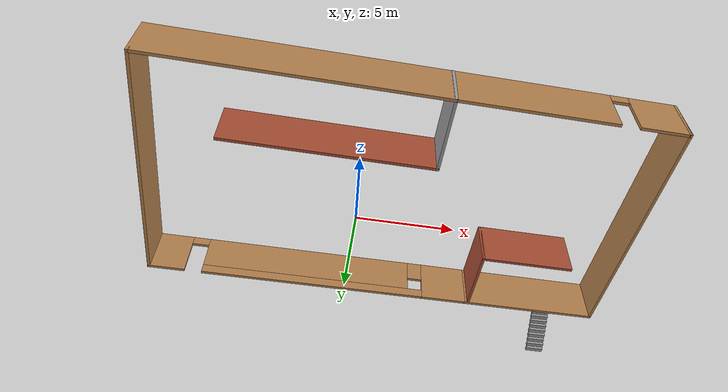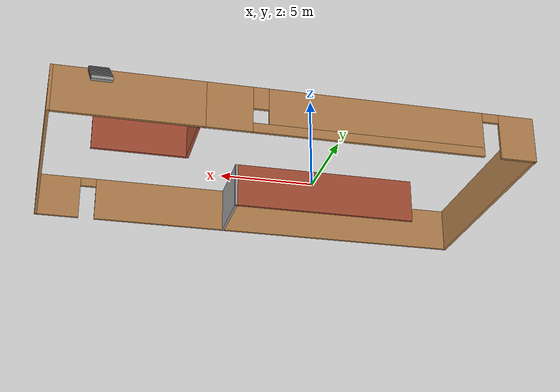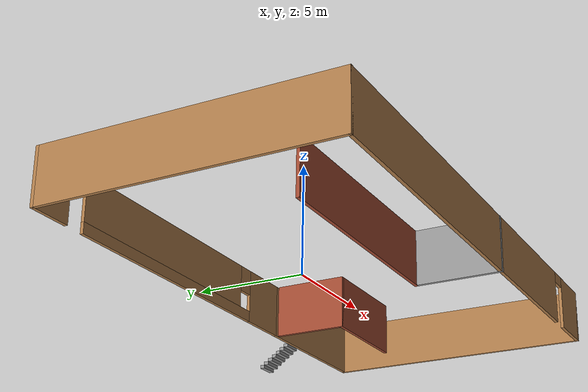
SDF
<?xml version='1.0'?>
<sdf version='1.7'>
  <model name='myenv'>
    <pose>1.91834 0.66891 0 0 -0 0</pose>
    <link name='Stairs_1'>
      <visual name='Stairs_1_Visual_0'>
        <pose>10.1907 8.14939 0.083333 0 -0 0</pose>
        <geometry>
          <box>
            <size>1 0.233333 0.166667</size>
          </box>
        </geometry>
        <material>
          <script>
            <uri>file://media/materials/scripts/gazebo.material</uri>
            <name>Gazebo/Grey</name>
          </script>
          <ambient>1 1 1 1</ambient>
        </material>
        <meta>
          <layer>0</layer>
        </meta>
      </visual>
      <collision name='Stairs_1_Collision_0'>
        <geometry>
          <box>
            <size>1 0.233333 0.166667</size>
          </box>
        </geometry>
        <pose>10.1907 8.14939 0.083333 0 -0 0</pose>
      </collision>
      <visual name='Stairs_1_Visual_1'>
        <pose>10.1907 7.91606 0.25 0 -0 0</pose>
        <geometry>
          <box>
            <size>1 0.233333 0.166667</size>
          </box>
        </geometry>
        <material>
          <script>
            <uri>file://media/materials/scripts/gazebo.material</uri>
            <name>Gazebo/Grey</name>
          </script>
          <ambient>1 1 1 1</ambient>
        </material>
        <meta>
          <layer>0</layer>
        </meta>
      </visual>
      <collision name='Stairs_1_Collision_1'>
        <geometry>
          <box>
            <size>1 0.233333 0.166667</size>
          </box>
        </geometry>
        <pose>10.1907 7.91606 0.25 0 -0 0</pose>
      </collision>
      <visual name='Stairs_1_Visual_2'>
        <pose>10.1907 7.68272 0.416667 0 -0 0</pose>
        <geometry>
          <box>
            <size>1 0.233333 0.166667</size>
          </box>
        </geometry>
        <material>
          <script>
            <uri>file://media/materials/scripts/gazebo.material</uri>
            <name>Gazebo/Grey</name>
          </script>
          <ambient>1 1 1 1</ambient>
        </material>
        <meta>
          <layer>0</layer>
        </meta>
      </visual>
      <collision name='Stairs_1_Collision_2'>
        <geometry>
          <box>
            <size>1 0.233333 0.166667</size>
          </box>
        </geometry>
        <pose>10.1907 7.68272 0.416667 0 -0 0</pose>
      </collision>
      <visual name='Stairs_1_Visual_3'>
        <pose>10.1907 7.44939 0.583333 0 -0 0</pose>
        <geometry>
          <box>
            <size>1 0.233333 0.166667</size>
          </box>
        </geometry>
        <material>
          <script>
            <uri>file://media/materials/scripts/gazebo.material</uri>
            <name>Gazebo/Grey</name>
          </script>
          <ambient>1 1 1 1</ambient>
        </material>
        <meta>
          <layer>0</layer>
        </meta>
      </visual>
      <collision name='Stairs_1_Collision_3'>
        <geometry>
          <box>
            <size>1 0.233333 0.166667</size>
          </box>
        </geometry>
        <pose>10.1907 7.44939 0.583333 0 -0 0</pose>
      </collision>
      <visual name='Stairs_1_Visual_4'>
        <pose>10.1907 7.21605 0.75 0 -0 0</pose>
        <geometry>
          <box>
            <size>1 0.233333 0.166667</size>
          </box>
        </geometry>
        <material>
          <script>
            <uri>file://media/materials/scripts/gazebo.material</uri>
            <name>Gazebo/Grey</name>
          </script>
          <ambient>1 1 1 1</ambient>
        </material>
        <meta>
          <layer>0</layer>
        </meta>
      </visual>
      <collision name='Stairs_1_Collision_4'>
        <geometry>
          <box>
            <size>1 0.233333 0.166667</size>
          </box>
        </geometry>
        <pose>10.1907 7.21605 0.75 0 -0 0</pose>
      </collision>
      <visual name='Stairs_1_Visual_5'>
        <pose>10.1907 6.98272 0.916667 0 -0 0</pose>
        <geometry>
          <box>
            <size>1 0.233333 0.166667</size>
          </box>
        </geometry>
        <material>
          <script>
            <uri>file://media/materials/scripts/gazebo.material</uri>
            <name>Gazebo/Grey</name>
          </script>
          <ambient>1 1 1 1</ambient>
        </material>
        <meta>
          <layer>0</layer>
        </meta>
      </visual>
      <collision name='Stairs_1_Collision_5'>
        <geometry>
          <box>
            <size>1 0.233333 0.166667</size>
          </box>
        </geometry>
        <pose>10.1907 6.98272 0.916667 0 -0 0</pose>
      </collision>
      <visual name='Stairs_1_Visual_6'>
        <pose>10.1907 6.74939 1.08333 0 -0 0</pose>
        <geometry>
          <box>
            <size>1 0.233333 0.166667</size>
          </box>
        </geometry>
        <material>
          <script>
            <uri>file://media/materials/scripts/gazebo.material</uri>
            <name>Gazebo/Grey</name>
          </script>
          <ambient>1 1 1 1</ambient>
        </material>
        <meta>
          <layer>0</layer>
        </meta>
      </visual>
      <collision name='Stairs_1_Collision_6'>
        <geometry>
          <box>
            <size>1 0.233333 0.166667</size>
          </box>
        </geometry>
        <pose>10.1907 6.74939 1.08333 0 -0 0</pose>
      </collision>
      <visual name='Stairs_1_Visual_7'>
        <pose>10.1907 6.51606 1.25 0 -0 0</pose>
        <geometry>
          <box>
            <size>1 0.233333 0.166667</size>
          </box>
        </geometry>
        <material>
          <script>
            <uri>file://media/materials/scripts/gazebo.material</uri>
            <name>Gazebo/Grey</name>
          </script>
          <ambient>1 1 1 1</ambient>
        </material>
        <meta>
          <layer>0</layer>
        </meta>
      </visual>
      <collision name='Stairs_1_Collision_7'>
        <geometry>
          <box>
            <size>1 0.233333 0.166667</size>
          </box>
        </geometry>
        <pose>10.1907 6.51606 1.25 0 -0 0</pose>
      </collision>
      <visual name='Stairs_1_Visual_8'>
        <pose>10.1907 6.28272 1.41667 0 -0 0</pose>
        <geometry>
          <box>
            <size>1 0.233333 0.166667</size>
          </box>
        </geometry>
        <material>
          <script>
            <uri>file://media/materials/scripts/gazebo.material</uri>
            <name>Gazebo/Grey</name>
          </script>
          <ambient>1 1 1 1</ambient>
        </material>
        <meta>
          <layer>0</layer>
        </meta>
      </visual>
      <collision name='Stairs_1_Collision_8'>
        <geometry>
          <box>
            <size>1 0.233333 0.166667</size>
          </box>
        </geometry>
        <pose>10.1907 6.28272 1.41667 0 -0 0</pose>
      </collision>
      <visual name='Stairs_1_Visual_9'>
        <pose>10.1907 6.04939 1.58333 0 -0 0</pose>
        <geometry>
          <box>
            <size>1 0.233333 0.166667</size>
          </box>
        </geometry>
        <material>
          <script>
            <uri>file://media/materials/scripts/gazebo.material</uri>
            <name>Gazebo/Grey</name>
          </script>
          <ambient>1 1 1 1</ambient>
        </material>
        <meta>
          <layer>0</layer>
        </meta>
      </visual>
      <collision name='Stairs_1_Collision_9'>
        <geometry>
          <box>
            <size>1 0.233333 0.166667</size>
          </box>
        </geometry>
        <pose>10.1907 6.04939 1.58333 0 -0 0</pose>
      </collision>
      <visual name='Stairs_1_Visual_10'>
        <pose>10.1907 5.81606 1.75 0 -0 0</pose>
        <geometry>
          <box>
            <size>1 0.233333 0.166667</size>
          </box>
        </geometry>
        <material>
          <script>
            <uri>file://media/materials/scripts/gazebo.material</uri>
            <name>Gazebo/Grey</name>
          </script>
          <ambient>1 1 1 1</ambient>
        </material>
        <meta>
          <layer>0</layer>
        </meta>
      </visual>
      <collision name='Stairs_1_Collision_10'>
        <geometry>
          <box>
            <size>1 0.233333 0.166667</size>
          </box>
        </geometry>
        <pose>10.1907 5.81606 1.75 0 -0 0</pose>
      </collision>
      <visual name='Stairs_1_Visual_11'>
        <pose>10.1907 5.58272 1.91667 0 -0 0</pose>
        <geometry>
          <box>
            <size>1 0.233333 0.166667</size>
          </box>
        </geometry>
        <material>
          <script>
            <uri>file://media/materials/scripts/gazebo.material</uri>
            <name>Gazebo/Grey</name>
          </script>
          <ambient>1 1 1 1</ambient>
        </material>
        <meta>
          <layer>0</layer>
        </meta>
      </visual>
      <collision name='Stairs_1_Collision_11'>
        <geometry>
          <box>
            <size>1 0.233333 0.166667</size>
          </box>
        </geometry>
        <pose>10.1907 5.58272 1.91667 0 -0 0</pose>
      </collision>
      <visual name='Stairs_1_Visual_12'>
        <pose>10.1907 5.34939 2.08333 0 -0 0</pose>
        <geometry>
          <box>
            <size>1 0.233333 0.166667</size>
          </box>
        </geometry>
        <material>
          <script>
            <uri>file://media/materials/scripts/gazebo.material</uri>
            <name>Gazebo/Grey</name>
          </script>
          <ambient>1 1 1 1</ambient>
        </material>
        <meta>
          <layer>0</layer>
        </meta>
      </visual>
      <collision name='Stairs_1_Collision_12'>
        <geometry>
          <box>
            <size>1 0.233333 0.166667</size>
          </box>
        </geometry>
        <pose>10.1907 5.34939 2.08333 0 -0 0</pose>
      </collision>
      <visual name='Stairs_1_Visual_13'>
        <pose>10.1907 5.11606 2.25 0 -0 0</pose>
        <geometry>
          <box>
            <size>1 0.233333 0.166667</size>
          </box>
        </geometry>
        <material>
          <script>
            <uri>file://media/materials/scripts/gazebo.material</uri>
            <name>Gazebo/Grey</name>
          </script>
          <ambient>1 1 1 1</ambient>
        </material>
        <meta>
          <layer>0</layer>
        </meta>
      </visual>
      <collision name='Stairs_1_Collision_13'>
        <geometry>
          <box>
            <size>1 0.233333 0.166667</size>
          </box>
        </geometry>
        <pose>10.1907 5.11606 2.25 0 -0 0</pose>
      </collision>
      <visual name='Stairs_1_Visual_14'>
        <pose>10.1907 4.88272 2.41667 0 -0 0</pose>
        <geometry>
          <box>
            <size>1 0.233333 0.166667</size>
          </box>
        </geometry>
        <material>
          <script>
            <uri>file://media/materials/scripts/gazebo.material</uri>
            <name>Gazebo/Grey</name>
          </script>
          <ambient>1 1 1 1</ambient>
        </material>
        <meta>
          <layer>0</layer>
        </meta>
      </visual>
      <collision name='Stairs_1_Collision_14'>
        <geometry>
          <box>
            <size>1 0.233333 0.166667</size>
          </box>
        </geometry>
        <pose>10.1907 4.88272 2.41667 0 -0 0</pose>
      </collision>
    </link>
    <link name='Wall_11'>
      <pose>0 -8.1765 0 0 -0 0</pose>
      <visual name='Wall_11_Visual_0'>
        <pose>-1.69628 0 1.25 0 -0 0</pose>
        <geometry>
          <box>
            <size>21.6074 0.15 2.5</size>
          </box>
        </geometry>
        <material>
          <script>
            <uri>file://media/materials/scripts/gazebo.material</uri>
            <name>Gazebo/Wood</name>
          </script>
          <ambient>1 1 1 1</ambient>
        </material>
        <meta>
          <layer>0</layer>
        </meta>
      </visual>
      <collision name='Wall_11_Collision_0'>
        <geometry>
          <box>
            <size>21.6074 0.15 2.5</size>
          </box>
        </geometry>
        <pose>-1.69628 0 1.25 0 -0 0</pose>
      </collision>
      <visual name='Wall_11_Visual_1'>
        <pose>11.2537 0 1.25 0 -0 0</pose>
        <geometry>
          <box>
            <size>2.49256 0.15 2.5</size>
          </box>
        </geometry>
        <material>
          <script>
            <uri>file://media/materials/scripts/gazebo.material</uri>
            <name>Gazebo/Wood</name>
          </script>
          <ambient>1 1 1 1</ambient>
        </material>
        <meta>
          <layer>0</layer>
        </meta>
      </visual>
      <collision name='Wall_11_Collision_1'>
        <geometry>
          <box>
            <size>2.49256 0.15 2.5</size>
          </box>
        </geometry>
        <pose>11.2537 0 1.25 0 -0 0</pose>
      </collision>
      <visual name='Wall_11_Visual_2'>
        <pose>9.55744 0 2.25 0 -0 0</pose>
        <geometry>
          <box>
            <size>0.9 0.15 0.5</size>
          </box>
        </geometry>
        <material>
          <script>
            <uri>file://media/materials/scripts/gazebo.material</uri>
            <name>Gazebo/Wood</name>
          </script>
          <ambient>1 1 1 1</ambient>
        </material>
        <meta>
          <layer>0</layer>
        </meta>
      </visual>
      <collision name='Wall_11_Collision_2'>
        <geometry>
          <box>
            <size>0.9 0.15 0.5</size>
          </box>
        </geometry>
        <pose>9.55744 0 2.25 0 -0 0</pose>
      </collision>
    </link>
    <link name='Wall_12'>
      <collision name='Wall_12_Collision'>
        <geometry>
          <box>
            <size>13 0.15 2.5</size>
          </box>
        </geometry>
        <pose>0 0 1.25 0 -0 0</pose>
      </collision>
      <visual name='Wall_12_Visual'>
        <pose>0 0 1.25 0 -0 0</pose>
        <geometry>
          <box>
            <size>13 0.15 2.5</size>
          </box>
        </geometry>
        <material>
          <script>
            <uri>file://media/materials/scripts/gazebo.material</uri>
            <name>Gazebo/Wood</name>
          </script>
          <ambient>1 1 1 1</ambient>
        </material>
        <meta>
          <layer>0</layer>
        </meta>
      </visual>
      <pose>12.425 -1.7515 0 0 -0 1.5708</pose>
    </link>
    <link name='Wall_13'>
      <collision name='Wall_13_Collision'>
        <geometry>
          <box>
            <size>7.65 0.15 2.5</size>
          </box>
        </geometry>
        <pose>0 0 1.25 0 -0 0</pose>
      </collision>
      <visual name='Wall_13_Visual'>
        <pose>0 0 1.25 0 -0 0</pose>
        <geometry>
          <box>
            <size>7.65 0.15 2.5</size>
          </box>
        </geometry>
        <material>
          <script>
            <uri>file://media/materials/scripts/gazebo.material</uri>
            <name>Gazebo/Wood</name>
          </script>
          <ambient>1 1 1 1</ambient>
        </material>
        <meta>
          <layer>0</layer>
        </meta>
      </visual>
      <pose>8.675 4.6735 0 0 -0 3.14159</pose>
    </link>
    <link name='Wall_27'>
      <collision name='Wall_27_Collision'>
        <geometry>
          <box>
            <size>3.5 0.15 2.5</size>
          </box>
        </geometry>
        <pose>0 0 1.25 0 -0 0</pose>
      </collision>
      <visual name='Wall_27_Visual'>
        <pose>0 0 1.25 0 -0 0</pose>
        <geometry>
          <box>
            <size>3.5 0.15 2.5</size>
          </box>
        </geometry>
        <material>
          <script>
            <uri>file://media/materials/scripts/gazebo.material</uri>
            <name>Gazebo/Bricks</name>
          </script>
          <ambient>1 1 1 1</ambient>
        </material>
        <meta>
          <layer>0</layer>
        </meta>
      </visual>
      <pose>5.1698 2.79564 0 0 -0 -1.5708</pose>
    </link>
    <link name='Wall_28'>
      <collision name='Wall_28_Collision'>
        <geometry>
          <box>
            <size>5 0.15 2.5</size>
          </box>
        </geometry>
        <pose>0 0 1.25 0 -0 0</pose>
      </collision>
      <visual name='Wall_28_Visual'>
        <pose>0 0 1.25 0 -0 0</pose>
        <geometry>
          <box>
            <size>5 0.15 2.5</size>
          </box>
        </geometry>
        <material>
          <script>
            <uri>file://media/materials/scripts/gazebo.material</uri>
            <name>Gazebo/Bricks</name>
          </script>
          <ambient>1 1 1 1</ambient>
        </material>
        <meta>
          <layer>0</layer>
        </meta>
      </visual>
      <pose>7.5948 1.12064 0 0 -0 0</pose>
    </link>
    <link name='Wall_31'>
      <collision name='Wall_31_Collision'>
        <geometry>
          <box>
            <size>4 0.15 2.5</size>
          </box>
        </geometry>
        <pose>0 0 1.25 0 -0 0</pose>
      </collision>
      <visual name='Wall_31_Visual'>
        <pose>0 0 1.25 0 -0 0</pose>
        <geometry>
          <box>
            <size>4 0.15 2.5</size>
          </box>
        </geometry>
        <material>
          <script>
            <uri>file://media/materials/scripts/gazebo.material</uri>
            <name>Gazebo/Grey</name>
          </script>
          <ambient>1 1 1 1</ambient>
        </material>
        <meta>
          <layer>0</layer>
        </meta>
      </visual>
      <pose>1.49897 -6.26605 0 0 -0 1.5708</pose>
    </link>
    <link name='Wall_32'>
      <collision name='Wall_32_Collision'>
        <geometry>
          <box>
            <size>10.5 0.15 2.5</size>
          </box>
        </geometry>
        <pose>0 0 1.25 0 -0 0</pose>
      </collision>
      <visual name='Wall_32_Visual'>
        <pose>0 0 1.25 0 -0 0</pose>
        <geometry>
          <box>
            <size>10.5 0.15 2.5</size>
          </box>
        </geometry>
        <material>
          <script>
            <uri>file://media/materials/scripts/gazebo.material</uri>
            <name>Gazebo/Bricks</name>
          </script>
          <ambient>1 1 1 1</ambient>
        </material>
        <meta>
          <layer>0</layer>
        </meta>
      </visual>
      <pose>-3.67603 -4.34105 0 0 -0 3.14159</pose>
    </link>
    <link name='Wall_7'>
      <pose>-3.75 4.6735 0 0 -0 3.14159</pose>
      <visual name='Wall_7_Visual_0'>
        <pose>-7.49977 0 1.25 0 -0 0</pose>
        <geometry>
          <box>
            <size>2.50046 0.15 2.5</size>
          </box>
        </geometry>
        <material>
          <script>
            <uri>file://media/materials/scripts/gazebo.material</uri>
            <name>Gazebo/Wood</name>
          </script>
          <ambient>1 1 1 1</ambient>
        </material>
        <meta>
          <layer>0</layer>
        </meta>
      </visual>
      <collision name='Wall_7_Collision_0'>
        <geometry>
          <box>
            <size>2.50046 0.15 2.5</size>
          </box>
        </geometry>
        <pose>-7.49977 0 1.25 0 -0 0</pose>
      </collision>
      <visual name='Wall_7_Visual_1'>
        <pose>7.77874 0 1.25 0 -0 0</pose>
        <geometry>
          <box>
            <size>1.94251 0.15 2.5</size>
          </box>
        </geometry>
        <material>
          <script>
            <uri>file://media/materials/scripts/gazebo.material</uri>
            <name>Gazebo/Wood</name>
          </script>
          <ambient>1 1 1 1</ambient>
        </material>
        <meta>
          <layer>0</layer>
        </meta>
      </visual>
      <collision name='Wall_7_Collision_1'>
        <geometry>
          <box>
            <size>1.94251 0.15 2.5</size>
          </box>
        </geometry>
        <pose>7.77874 0 1.25 0 -0 0</pose>
      </collision>
      <visual name='Wall_7_Visual_2'>
        <pose>-0.171028 0 0.25 0 -0 0</pose>
        <geometry>
          <box>
            <size>12.157 0.15 0.5</size>
          </box>
        </geometry>
        <material>
          <script>
            <uri>file://media/materials/scripts/gazebo.material</uri>
            <name>Gazebo/Wood</name>
          </script>
          <ambient>1 1 1 1</ambient>
        </material>
        <meta>
          <layer>0</layer>
        </meta>
      </visual>
      <collision name='Wall_7_Collision_2'>
        <geometry>
          <box>
            <size>12.157 0.15 0.5</size>
          </box>
        </geometry>
        <pose>-0.171028 0 0.25 0 -0 0</pose>
      </collision>
      <visual name='Wall_7_Visual_3'>
        <pose>0.228972 0 1.5 0 -0 0</pose>
        <geometry>
          <box>
            <size>11.357 0.15 2</size>
          </box>
        </geometry>
        <material>
          <script>
            <uri>file://media/materials/scripts/gazebo.material</uri>
            <name>Gazebo/Wood</name>
          </script>
          <ambient>1 1 1 1</ambient>
        </material>
        <meta>
          <layer>0</layer>
        </meta>
      </visual>
      <collision name='Wall_7_Collision_3'>
        <geometry>
          <box>
            <size>11.357 0.15 2</size>
          </box>
        </geometry>
        <pose>0.228972 0 1.5 0 -0 0</pose>
      </collision>
      <visual name='Wall_7_Visual_4'>
        <pose>-5.84954 0 1.9 0 -0 0</pose>
        <geometry>
          <box>
            <size>0.8 0.15 1.2</size>
          </box>
        </geometry>
        <material>
          <script>
            <uri>file://media/materials/scripts/gazebo.material</uri>
            <name>Gazebo/Wood</name>
          </script>
          <ambient>1 1 1 1</ambient>
        </material>
        <meta>
          <layer>0</layer>
        </meta>
      </visual>
      <collision name='Wall_7_Collision_4'>
        <geometry>
          <box>
            <size>0.8 0.15 1.2</size>
          </box>
        </geometry>
        <pose>-5.84954 0 1.9 0 -0 0</pose>
      </collision>
      <visual name='Wall_7_Visual_5'>
        <pose>6.35749 0 2.25 0 -0 0</pose>
        <geometry>
          <box>
            <size>0.9 0.15 0.5</size>
          </box>
        </geometry>
        <material>
          <script>
            <uri>file://media/materials/scripts/gazebo.material</uri>
            <name>Gazebo/Wood</name>
          </script>
          <ambient>1 1 1 1</ambient>
        </material>
        <meta>
          <layer>0</layer>
        </meta>
      </visual>
      <collision name='Wall_7_Collision_5'>
        <geometry>
          <box>
            <size>0.9 0.15 0.5</size>
          </box>
        </geometry>
        <pose>6.35749 0 2.25 0 -0 0</pose>
      </collision>
    </link>
    <link name='Wall_8'>
      <collision name='Wall_8_Collision'>
        <geometry>
          <box>
            <size>13 0.15 2.5</size>
          </box>
        </geometry>
        <pose>0 0 1.25 0 -0 0</pose>
      </collision>
      <visual name='Wall_8_Visual'>
        <pose>0 0 1.25 0 -0 0</pose>
        <geometry>
          <box>
            <size>13 0.15 2.5</size>
          </box>
        </geometry>
        <material>
          <script>
            <uri>file://media/materials/scripts/gazebo.material</uri>
            <name>Gazebo/Wood</name>
          </script>
          <ambient>1 1 1 1</ambient>
        </material>
        <meta>
          <layer>0</layer>
        </meta>
      </visual>
      <pose>-12.425 -1.7515 0 0 -0 -1.5708</pose>
    </link>
    <static>1</static>
  </model>
</sdf>
